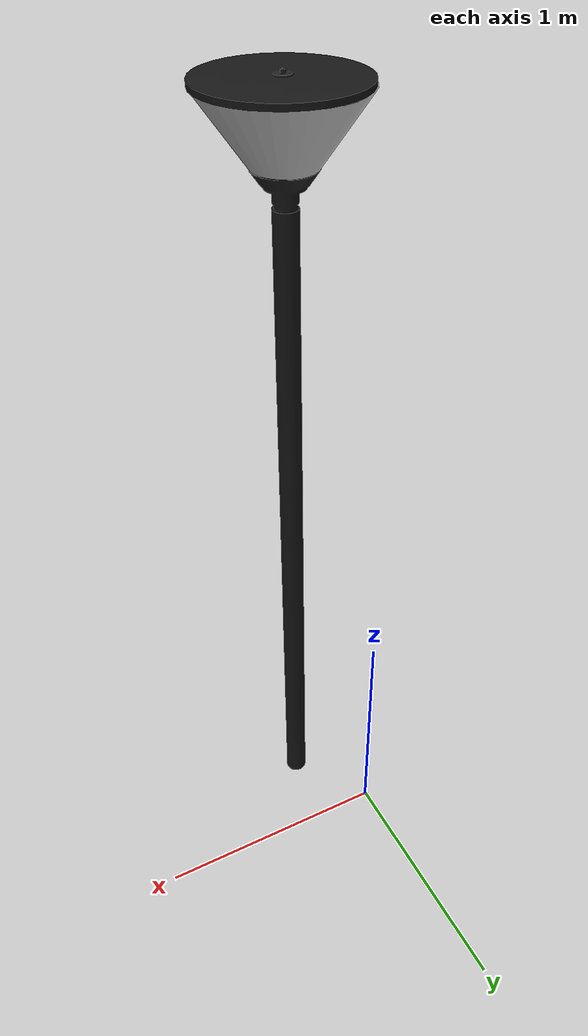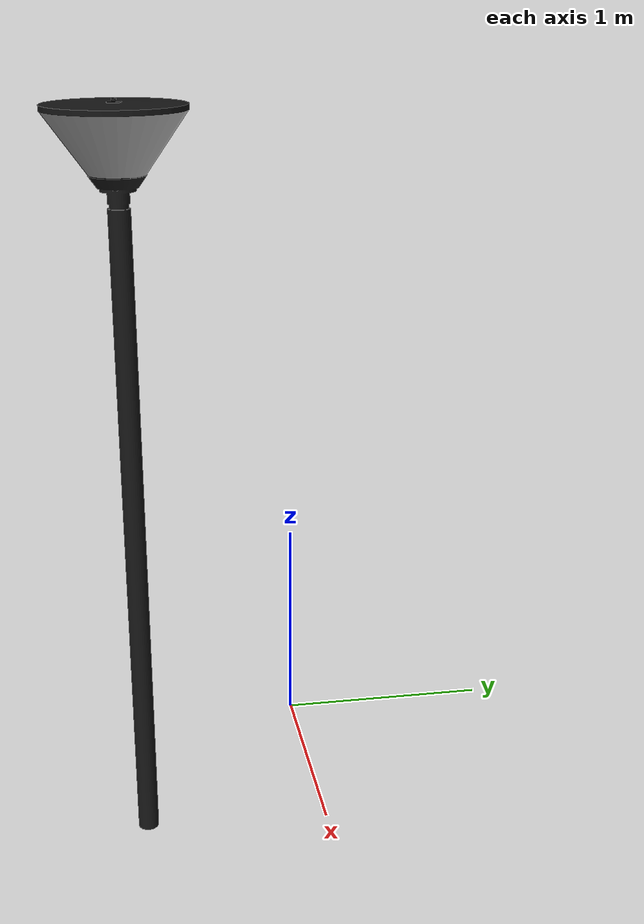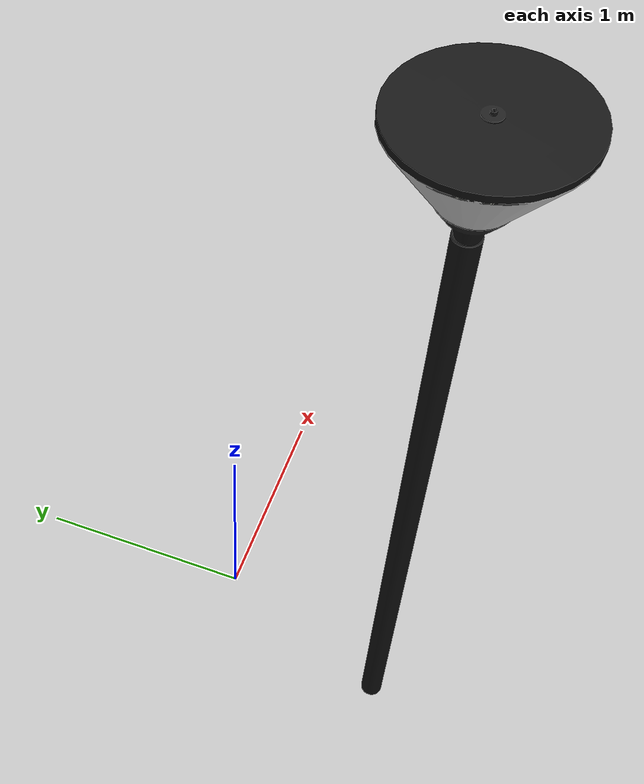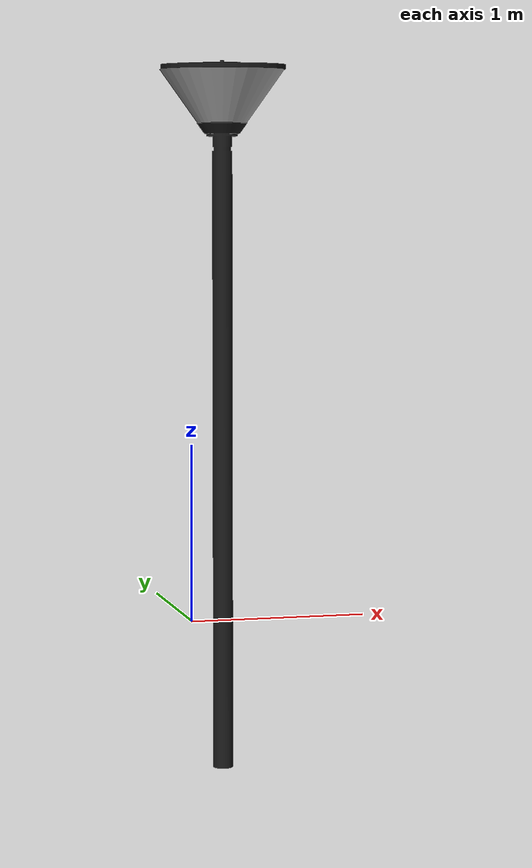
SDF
<?xml version="1.0" ?>
<sdf version="1.5">
  <model name="street_lamp">
    <static>true</static>
    <link name="street_lamp_link">
      <collision name="collision">
        <geometry>
          <mesh>
            <uri>model://street_lamp/meshes/street_lamp.stl</uri>
          </mesh>
        </geometry>
      </collision>
      <visual name="visual">
        <geometry>
          <mesh>
            <uri>model://street_lamp/meshes/street_lamp.dae</uri>
          </mesh>
        </geometry>
      </visual>
    </link>
  </model>
</sdf>
